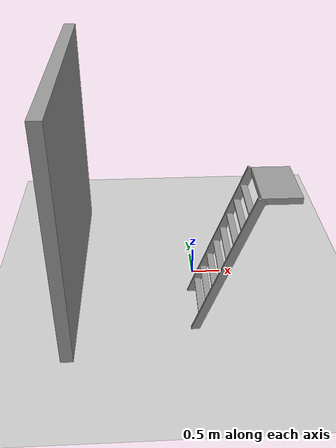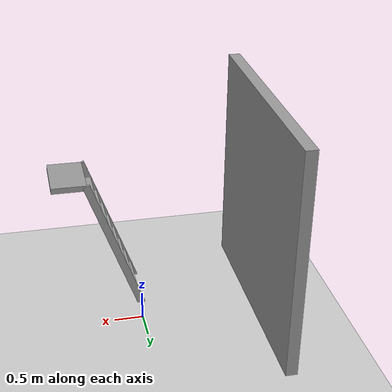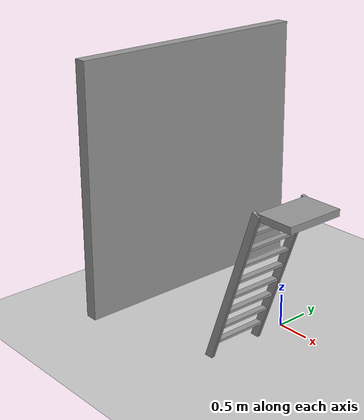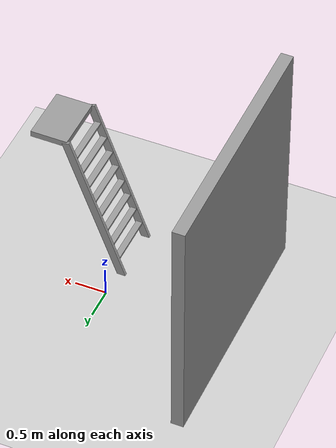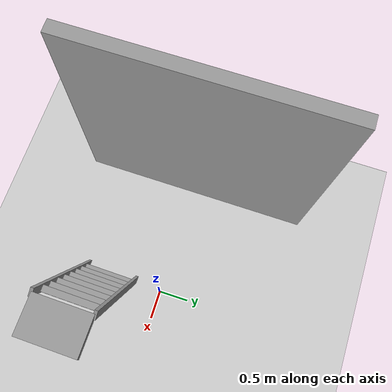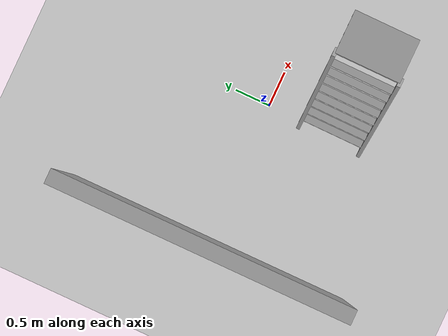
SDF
<sdf version="1.7">
 <world name="default">
  <model name="ground_plane">
   <static>1</static>
   <link name="link">
    <collision name="collision">
     <geometry><plane><normal>0 0 1</normal><size>100 100</size></plane></geometry>
     <surface>
      <contact><collide_bitmask>65535</collide_bitmask></contact>
      <friction><ode><mu>100</mu><mu2>50</mu2></ode></friction>
     </surface>
    </collision>
    <visual name="visual">
     <cast_shadows>0</cast_shadows>
     <geometry><plane><normal>0 0 1</normal><size>100 100</size></plane></geometry>
     <material>
      <script><uri>file://media/materials/scripts/gazebo.material</uri><name>Gazebo/Grey</name></script>
     </material>
    </visual>
   </link>
  </model>
  <model name="grey_wall_0">
   <static>1</static>
   <link name="link">
    <pose>0 0 2 0 -0 0</pose>
    <collision name="collision"><geometry><box><size>0.2 4 4</size></box></geometry></collision>
    <visual name="visual">
     <cast_shadows>0</cast_shadows>
     <geometry><box><size>0.2 4 4</size></box></geometry>
     <material><script><name>vrc/grey_wall</name><uri>__default__</uri></script></material>
    </visual>
   </link>
   <pose>-2.06266 0.005122 0 0 -0 0</pose>
  </model>
  <model name="ladder_70deg_0rails_clone_0">
   <static>1</static>
   <link name="step0">
    <pose>0 0.097059 0.266667 0 -0 0</pose>
    <inertial>
     <mass>9.75482</mass>
     <inertia>
      <ixx>0.00957124</ixx>
      <iyy>0.65963</iyy>
      <izz>0.666842</izz>
      <ixy>0</ixy>
      <ixz>0</ixz>
      <iyz>0</iyz>
     </inertia>
    </inertial>
    <collision name="collision"><geometry><box><size>0.9 0.1016 0.0381</size></box></geometry></collision>
    <visual name="visual">
     <geometry><box><size>0.9 0.1016 0.0381</size></box></geometry>
     <material>
      <script><uri>file://media/materials/scripts/gazebo.material</uri><name>Gazebo/Grey</name></script>
     </material>
    </visual>
   </link>
   <link name="step1">
    <pose>0 0.194117 0.533333 0 -0 0</pose>
    <inertial>
     <mass>9.75482</mass>
     <inertia>
      <ixx>0.00957124</ixx>
      <iyy>0.65963</iyy>
      <izz>0.666842</izz>
      <ixy>0</ixy>
      <ixz>0</ixz>
      <iyz>0</iyz>
     </inertia>
    </inertial>
    <collision name="collision"><geometry><box><size>0.9 0.1016 0.0381</size></box></geometry></collision>
    <visual name="visual">
     <geometry><box><size>0.9 0.1016 0.0381</size></box></geometry>
     <material>
      <script><uri>file://media/materials/scripts/gazebo.material</uri><name>Gazebo/Grey</name></script>
     </material>
    </visual>
   </link>
   <link name="step2">
    <pose>0 0.291176 0.8 0 -0 0</pose>
    <inertial>
     <mass>9.75482</mass>
     <inertia>
      <ixx>0.00957124</ixx>
      <iyy>0.65963</iyy>
      <izz>0.666842</izz>
      <ixy>0</ixy>
      <ixz>0</ixz>
      <iyz>0</iyz>
     </inertia>
    </inertial>
    <collision name="collision"><geometry><box><size>0.9 0.1016 0.0381</size></box></geometry></collision>
    <visual name="visual">
     <geometry><box><size>0.9 0.1016 0.0381</size></box></geometry>
     <material>
      <script><uri>file://media/materials/scripts/gazebo.material</uri><name>Gazebo/Grey</name></script>
     </material>
    </visual>
   </link>
   <link name="step3">
    <pose>0 0.388235 1.06667 0 -0 0</pose>
    <inertial>
     <mass>9.75482</mass>
     <inertia>
      <ixx>0.00957124</ixx>
      <iyy>0.65963</iyy>
      <izz>0.666842</izz>
      <ixy>0</ixy>
      <ixz>0</ixz>
      <iyz>0</iyz>
     </inertia>
    </inertial>
    <collision name="collision"><geometry><box><size>0.9 0.1016 0.0381</size></box></geometry></collision>
    <visual name="visual">
     <geometry><box><size>0.9 0.1016 0.0381</size></box></geometry>
     <material>
      <script><uri>file://media/materials/scripts/gazebo.material</uri><name>Gazebo/Grey</name></script>
     </material>
    </visual>
   </link>
   <link name="step4">
    <pose>0 0.485294 1.33333 0 -0 0</pose>
    <inertial>
     <mass>9.75482</mass>
     <inertia>
      <ixx>0.00957124</ixx>
      <iyy>0.65963</iyy>
      <izz>0.666842</izz>
      <ixy>0</ixy>
      <ixz>0</ixz>
      <iyz>0</iyz>
     </inertia>
    </inertial>
    <collision name="collision"><geometry><box><size>0.9 0.1016 0.0381</size></box></geometry></collision>
    <visual name="visual">
     <geometry><box><size>0.9 0.1016 0.0381</size></box></geometry>
     <material>
      <script><uri>file://media/materials/scripts/gazebo.material</uri><name>Gazebo/Grey</name></script>
     </material>
    </visual>
   </link>
   <link name="step5">
    <pose>0 0.582352 1.6 0 -0 0</pose>
    <inertial>
     <mass>9.75482</mass>
     <inertia>
      <ixx>0.00957124</ixx>
      <iyy>0.65963</iyy>
      <izz>0.666842</izz>
      <ixy>0</ixy>
      <ixz>0</ixz>
      <iyz>0</iyz>
     </inertia>
    </inertial>
    <collision name="collision"><geometry><box><size>0.9 0.1016 0.0381</size></box></geometry></collision>
    <visual name="visual">
     <geometry><box><size>0.9 0.1016 0.0381</size></box></geometry>
     <material>
      <script><uri>file://media/materials/scripts/gazebo.material</uri><name>Gazebo/Grey</name></script>
     </material>
    </visual>
   </link>
   <link name="step6">
    <pose>0 0.679411 1.86667 0 -0 0</pose>
    <inertial>
     <mass>9.75482</mass>
     <inertia>
      <ixx>0.00957124</ixx>
      <iyy>0.65963</iyy>
      <izz>0.666842</izz>
      <ixy>0</ixy>
      <ixz>0</ixz>
      <iyz>0</iyz>
     </inertia>
    </inertial>
    <collision name="collision"><geometry><box><size>0.9 0.1016 0.0381</size></box></geometry></collision>
    <visual name="visual">
     <geometry><box><size>0.9 0.1016 0.0381</size></box></geometry>
     <material>
      <script><uri>file://media/materials/scripts/gazebo.material</uri><name>Gazebo/Grey</name></script>
     </material>
    </visual>
   </link>
   <link name="step7">
    <pose>0 0.77647 2.13333 0 -0 0</pose>
    <inertial>
     <mass>9.75482</mass>
     <inertia>
      <ixx>0.00957124</ixx>
      <iyy>0.65963</iyy>
      <izz>0.666842</izz>
      <ixy>0</ixy>
      <ixz>0</ixz>
      <iyz>0</iyz>
     </inertia>
    </inertial>
    <collision name="collision"><geometry><box><size>0.9 0.1016 0.0381</size></box></geometry></collision>
    <visual name="visual">
     <geometry><box><size>0.9 0.1016 0.0381</size></box></geometry>
     <material>
      <script><uri>file://media/materials/scripts/gazebo.material</uri><name>Gazebo/Grey</name></script>
     </material>
    </visual>
   </link>
   <link name="landing">
    <pose>0 1.17353 2.4 0 -0 0</pose>
    <inertial>
     <mass>57.6072</mass>
     <inertia><ixx>1.73518</ixx><iyy>3.89545</iyy><izz>5.6167</izz><ixy>0</ixy><ixz>0</ixz><iyz>0</iyz></inertia>
    </inertial>
    <collision name="collision"><geometry><box><size>0.9 0.6 0.1016</size></box></geometry></collision>
    <visual name="visual">
     <geometry><box><size>0.9 0.6 0.1016</size></box></geometry>
     <material>
      <script><uri>file://media/materials/scripts/gazebo.material</uri><name>Gazebo/Grey</name></script>
     </material>
    </visual>
   </link>
   <link name="left_side_wall">
    <pose>-0.45 0.436764 1.2 1.22173 -0 0</pose>
    <collision name="collision"><geometry><box><size>0.0508 2.63403 0.13</size></box></geometry></collision>
    <visual name="visual">
     <geometry><box><size>0.0508 2.63403 0.13</size></box></geometry>
     <material>
      <script><uri>file://media/materials/scripts/gazebo.material</uri><name>Gazebo/Grey</name></script>
     </material>
    </visual>
   </link>
   <link name="right_side_wall">
    <pose>0.45 0.436764 1.2 1.22173 -0 0</pose>
    <collision name="collision"><geometry><box><size>0.0508 2.63403 0.13</size></box></geometry></collision>
    <visual name="visual">
     <geometry><box><size>0.0508 2.63403 0.13</size></box></geometry>
     <material>
      <script><uri>file://media/materials/scripts/gazebo.material</uri><name>Gazebo/Grey</name></script>
     </material>
    </visual>
   </link>
   <pose>-0.057863 -0.92893 0 0 0 -1.5783</pose>
  </model>
 </world>
</sdf>
